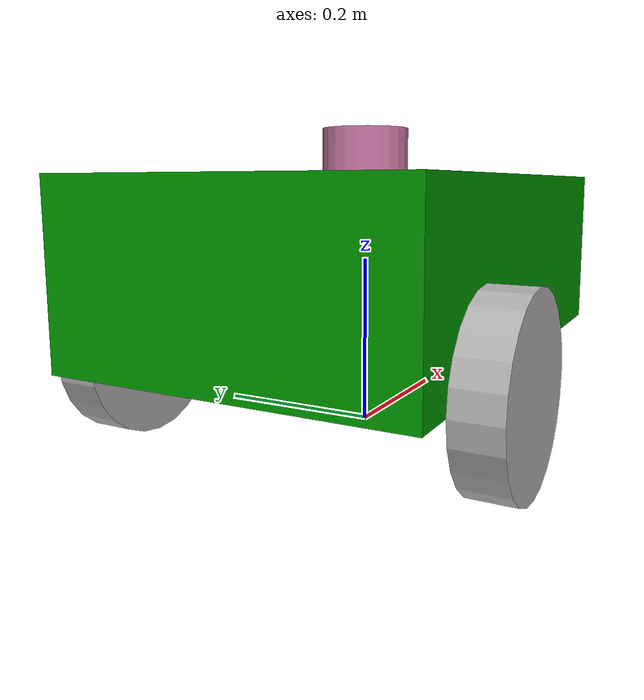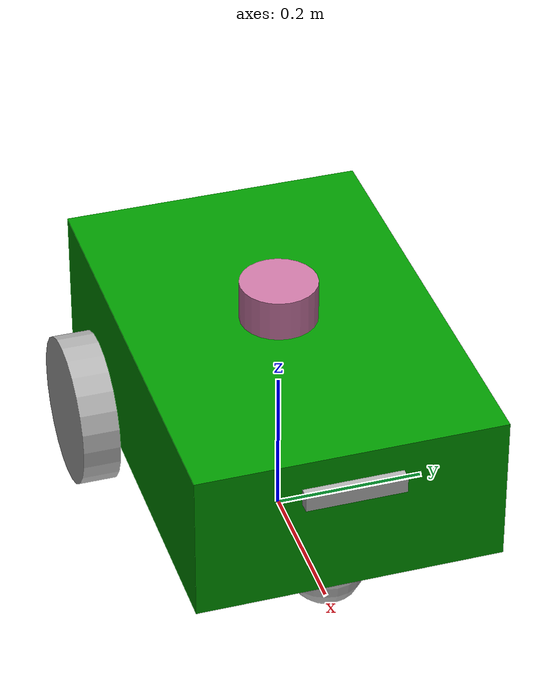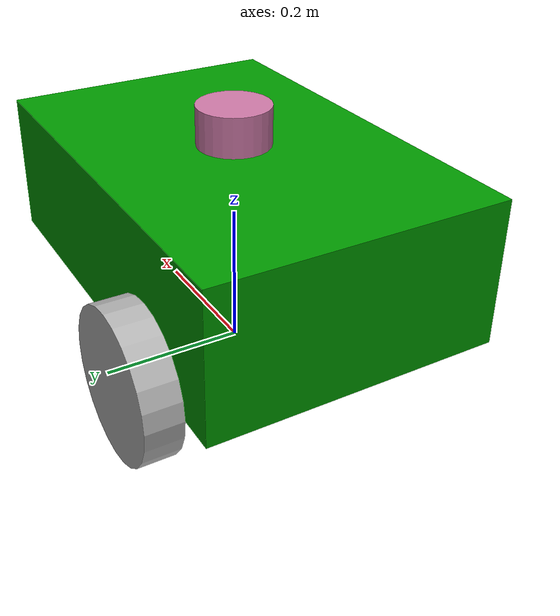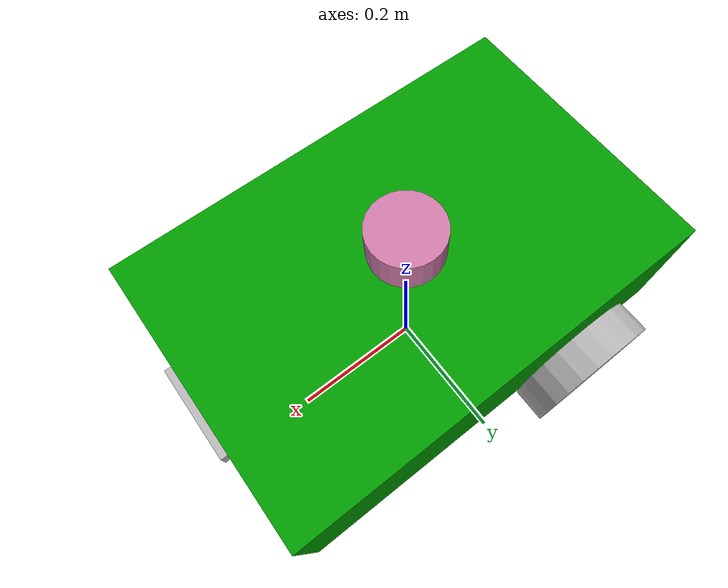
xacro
<?xml version="1.0"?>
<robot name="my_robot" xmlns:xacro="http://www.ros.org/wiki/xacro">

    <xacro:include filename="$(find car_description)/urdf/common_properties.xacro" />
    <xacro:include filename="$(find car_description)/urdf/mobile_base.xacro" />
    <xacro:include filename="$(find car_description)/urdf/mobile_base_gazebo.xacro" />
    <xacro:include filename="$(find car_description)/urdf/lidar.xacro" />
    <xacro:include filename="$(find car_description)/urdf/camera.xacro" />

</robot>

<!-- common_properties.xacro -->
<robot xmlns:xacro="http://www.ros.org/wiki/xacro">
    <material name="green">
        <color rgba="0 0.6 0 1" />
    </material>

    <material name="gray">
        <color rgba="0.7 0.7 0.7 1" />
    </material>
    <xacro:macro name="box_inertia" params="m x y z o_xyz o_rpy">
        <inertial>
            <mass value="${m}" />
            <origin xyz="${o_xyz}" rpy="${o_rpy}" />
            <inertia ixx="${(m/12) * (z*z + y*y)}" ixy="0" ixz="0" iyy="${(m/12) * (x*x + z*z)}" iyz="0"
            izz="${(m/12) * (x*x + y*y)}" />
        </inertial>
    </xacro:macro>

    <xacro:macro name="cylinder_inertia" params="m r l o_xyz o_rpy">
        <inertial>
            <mass value="${m}" />
            <origin xyz="${o_xyz}" rpy="${o_rpy}" />
            <inertia ixx="${(m/12) * (3*r*r + l*l)}" ixy="0" ixz="0"
            iyy="${(m/12) * (3*r*r + l*l)}" iyz="0"
            izz="${(m/2) * (r*r)}" />
        </inertial>
    </xacro:macro>

    <xacro:macro name="sphere_inertia" params="m r o_xyz o_rpy">
        <inertial>
            <mass value="${m}" />
            <origin xyz="${o_xyz}" rpy="${o_rpy}" />
            <inertia ixx="${(2/5) * m * r * r}" ixy="0" ixz="0"
            iyy="${(2/5) * m * r * r}" iyz="0"
            izz="${(2/5) * m * r * r}" />
        </inertial>
    </xacro:macro>
</robot>

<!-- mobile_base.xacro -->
<robot xmlns:xacro="http://www.ros.org/wiki/xacro">
  <xacro:property name="base_length" value="0.6" />
  <xacro:property name="base_width" value="0.4" />
  <xacro:property name="base_height" value="0.2" />
  <xacro:property name="wheel_radius" value="0.1" />
  <xacro:property name="wheel_length" value="0.05" />

  <link name="base_footprint" />

  <link name="base_link">
    <visual>
      <geometry>
        <box size="${base_length} ${base_width} ${base_height}" />
      </geometry>
      <origin xyz="0 0 ${base_height / 2.0}" rpy="0 0 0" />
      <material name="green" />
    </visual>
    <xacro:box_inertia m="5.0" x="${base_length}" y="${base_width}" z="${base_height}"
      o_xyz="0 0 ${base_height / 2.0}" o_rpy="0 0 0" />
    <collision>
      <geometry>
        <box size="${base_length} ${base_width} ${base_height}"
        />
      </geometry>
      <origin xyz="0 0 ${base_height / 2.0}" rpy="0 0 0" />
    </collision>
  </link>

  <xacro:macro name="wheel_link" params="prefix">
    <link name="${prefix}_wheel_link">
      <visual>
        <geometry>
          <cylinder radius="${wheel_radius}" length="${wheel_length}" />
        </geometry>
        <origin xyz="0 0 0" rpy="${pi / 2.0} 0 0" />
        <material name="gray" />
      </visual>
      <xacro:cylinder_inertia m="1.0" r="${wheel_radius}" l="${wheel_length}" o_xyz="0 0 0"
        o_rpy="${pi / 2.0} 0 0" />
      <collision>
        <geometry>
          <sphere radius="${wheel_radius}" />
        </geometry>
        <origin xyz="0 0 0" rpy="0 0 0" />
      </collision>

    </link>
  </xacro:macro>

  <xacro:wheel_link prefix="right" />
  <xacro:wheel_link prefix="left" />

  <link name="caster_wheel_link">
    <visual>
      <geometry>
        <sphere radius="${wheel_radius / 2.0}" />
      </geometry>
      <origin xyz="0 0 0" rpy="0 0 0" />
      <material name="gray" />
    </visual>
    <xacro:sphere_inertia m="0.5" r="${wheel_radius / 2.0}" o_xyz="0 0 0" o_rpy="0 0 0" />
    <collision>
      <geometry>
        <sphere radius="${wheel_radius / 2.0}" />
      </geometry>
      <origin xyz="0 0 0" rpy="0 0 0" />
    </collision>
  </link>

  <joint name="base_joint" type="fixed">
    <parent link="base_footprint" />
    <child link="base_link" />
    <origin xyz="0 0 ${wheel_radius}" rpy="0 0 0" />
  </joint>

  <joint name="base_right_wheel_joint" type="continuous">
    <parent link="base_link" />
    <child link="right_wheel_link" />
    <origin xyz="${-base_length / 4.0} ${-(base_width + wheel_length) / 2.0} 0" rpy="0 0 0" />
    <axis xyz="0 1 0" />
  </joint>

  <joint name="base_left_wheel_joint" type="continuous">
    <parent link="base_link" />
    <child link="left_wheel_link" />
    <origin xyz="${-base_length / 4.0} ${(base_width + wheel_length) / 2.0} 0" rpy="0 0 0" />
    <axis xyz="0 1 0" />
  </joint>

  <joint name="base_caster_wheel_joint" type="fixed">
    <parent link="base_link" />
    <child link="caster_wheel_link" />
    <origin xyz="${base_length / 3.0} 0 ${-wheel_radius / 2.0}" rpy="0 0 0" />
  </joint>

  <!-- Fixed joint connecting the base to the IMU -->
  <joint name="imu_joint" type="fixed">
    <parent link="base_link" />
    <child link="imu_link" />
    <origin xyz="0 0 0.01" rpy="0 0 0" />
  </joint>

  <!-- IMU link definition -->
  <link name="imu_link">
    <!-- Optional visual element for debugging -->
    <visual name="imu_link_visual">
      <origin xyz="0 0 0" rpy="0 0 0" />
      <geometry>
        <box size="0.1 0.1 0.1" />
      </geometry>
    </visual>

    <!-- Collision element (should match the visual shape for simplicity) -->
    <collision name="imu_link_collision">
      <origin xyz="0 0 0" rpy="0 0 0" />
      <geometry>
        <box size="0.1 0.1 0.1" />
      </geometry>
    </collision>

    <!-- Inertial properties using a xacro macro -->
    <xacro:box_inertia m="0.1" x="0.1" y="0.1" z="0.1" o_xyz="0 0 0.05" o_rpy="0 0 0" />
  </link>

  <!-- Gazebo extension to add the IMU sensor -->
  <gazebo reference="imu_link">
    <sensor type="imu" name="imu_sensor">
      <always_on>true</always_on>
      <update_rate>100</update_rate>
      <visualize>true</visualize>
      <topic>demo/imu</topic>
      <!-- Use Gazebo’s frame id parameter -->
      <frame_id>imu_link</frame_id>
      <imu>
        <angular_velocity>
          <x>
            <noise type="gaussian">
              <mean>0.0</mean>
              <stddev>0.0002</stddev>
              <bias_mean>0.0000075</bias_mean>
              <bias_stddev>0.0000008</bias_stddev>
            </noise>
          </x>
          <y>
            <noise type="gaussian">
              <mean>0.0</mean>
              <stddev>0.0002</stddev>
              <bias_mean>0.0000075</bias_mean>
              <bias_stddev>0.0000008</bias_stddev>
            </noise>
          </y>
          <z>
            <noise type="gaussian">
              <mean>0.0</mean>
              <stddev>0.0002</stddev>
              <bias_mean>0.0000075</bias_mean>
              <bias_stddev>0.0000008</bias_stddev>
            </noise>
          </z>
        </angular_velocity>
        <linear_acceleration>
          <x>
            <noise type="gaussian">
              <mean>0.0</mean>
              <stddev>0.017</stddev>
              <bias_mean>0.1</bias_mean>
              <bias_stddev>0.001</bias_stddev>
            </noise>
          </x>
          <y>
            <noise type="gaussian">
              <mean>0.0</mean>
              <stddev>0.017</stddev>
              <bias_mean>0.1</bias_mean>
              <bias_stddev>0.001</bias_stddev>
            </noise>
          </y>
          <z>
            <noise type="gaussian">
              <mean>0.0</mean>
              <stddev>0.017</stddev>
              <bias_mean>0.1</bias_mean>
              <bias_stddev>0.001</bias_stddev>
            </noise>
          </z>
        </linear_acceleration>
      </imu>
      <!-- Attach the Gazebo ROS IMU sensor plugin -->
      <plugin filename="gz-sim-imu-system"
        name="gz::sim::systems::Imu">
      </plugin>
    </sensor>
  </gazebo>

</robot>

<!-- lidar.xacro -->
<robot xmlns:xacro="http://www.ros.org/wiki/xacro">
    <!-- Joint -->
    <joint name="lidar_joint" type="fixed">
        <parent link="base_link" />
        <child link="lidar_link" />
        <origin xyz="0 0 ${base_height + 0.055/2}" rpy="0 0 0" />
    </joint>

    <!-- Link -->
    <link name="lidar_link">
        <visual>
            <geometry>
                <cylinder radius="0.0508" length="0.055" />
            </geometry>
        </visual>

        <collision>
            <geometry>
                <cylinder radius="0.0508" length="0.055" />
            </geometry>
        </collision>
        <xacro:cylinder_inertia m="1.0" r="0.0508" l="0.055" o_xyz="0 0 0" o_rpy="${pi / 2.0} 0 0" />
    </link>
    <!-- Gazebo sensor plugin -->
    <gazebo reference="lidar_link">
        <sensor name="lidar" type="gpu_lidar">
            <always_on>true</always_on>
            <visualize>true</visualize>
            <update_rate>5</update_rate>
                <topic>scan</topic>
                <gz_frame_id>lidar_link</gz_frame_id>
            <ray>
                <scan>
                    <horizontal>
                        <samples>360</samples>
                        <resolution>1.0</resolution>
                        <min_angle>0.0</min_angle>
                        <max_angle>6.28</max_angle>
                    </horizontal>
                </scan>
                <range>
                    <min>0.12</min>
                    <max>3.5</max>
                    <resolution>0.015</resolution>
                </range>
                <noise>
                    <type>gaussian</type>
                    <mean>0.0</mean>
                    <stddev>0.01</stddev>
                </noise>
            </ray>

            <plugin
                filename="gz-sim-sensors-system"
                name="gz::sim::systems::Sensors">

            </plugin>

        </sensor>
    </gazebo>

</robot>

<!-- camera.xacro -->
<robot xmlns:xacro="http://www.ros.org/wiki/xacro">
<!-- Joint connecting base_link to camera_link -->
<joint name="camera_joint" type="fixed">
  <parent link="base_link"/>
  <child link="camera_link"/>
  <origin xyz="${(base_length + 0.015)/2} 0 0.15" rpy="0 0 0"/>
</joint>

<!-- Definition of the camera_link -->
<link name="camera_link">
  <!-- Visual representation -->
  <visual name="camera_link_visual">
    <origin xyz="0 0 0" rpy="0 0 0"/>
    <geometry>
      <box size="0.015 0.130 0.0222"/>
    </geometry>
  </visual>

  <!-- Collision representation -->
  <collision name="camera_link_collision">
    <origin xyz="0 0 0" rpy="0 0 0"/>
    <geometry>
      <box size="0.015 0.130 0.0222"/>
    </geometry>
  </collision>

  <!-- Inertial properties provided by a xacro macro -->
   <xacro:box_inertia m="0.035" x="0.015" y="0.130" z="0.0222" o_xyz="0 0 0.05" o_rpy="0 0 0"/>
</link>

<!-- Gazebo extension to attach the sensor to camera_link -->
<gazebo reference="camera_link">
  <sensor type="rgbd_camera" name="depth_camera">
    <always_on>true</always_on>
    <visualize>true</visualize>
    <update_rate>5.0</update_rate>
    <topic>depth_camera</topic>
    <gz_frame_id>camera_link</gz_frame_id>
    <camera>
      <horizontal_fov>1.047198</horizontal_fov>
      <image>
        <width>640</width>
        <height>480</height>
      </image>
      <clip>
        <near>0.05</near>
        <far>3</far>
      </clip>

    </camera>
    <baseline>0.2</baseline>
    <pointCloudCutoff>0.5</pointCloudCutoff>
    <pointCloudCutoffMax>3.0</pointCloudCutoffMax>
    <distortionK1>0</distortionK1>
    <distortionK2>0</distortionK2>
    <distortionK3>0</distortionK3>
    <distortionT1>0</distortionT1>
    <distortionT2>0</distortionT2>
    <CxPrime>0</CxPrime>
    <Cx>0</Cx>
    <Cy>0</Cy>
    <focalLength>0</focalLength>
    <hackBaseline>0</hackBaseline>
  </sensor>
</gazebo>

</robot>
